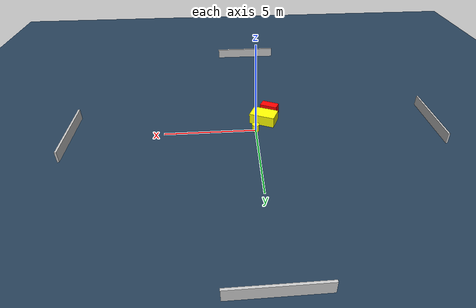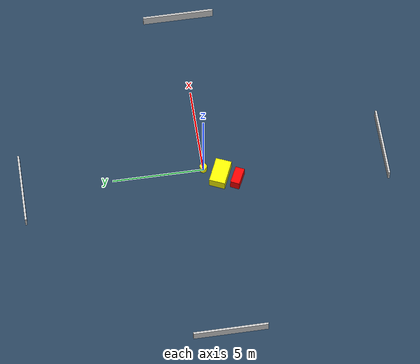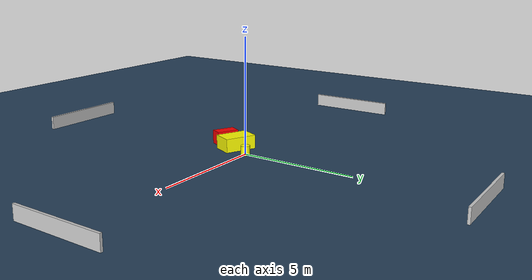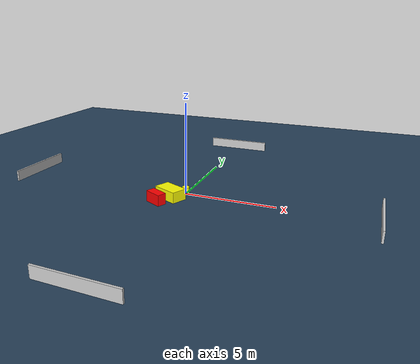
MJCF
<?xml version="1.0" ?>
<mujoco model="generated_environment">
  <option timestep="0.01" integrator="RK4" cone="elliptic"/>
  <default>
    <geom density="1"/>
  </default>
  <asset>
    <texture builtin="gradient" height="3072" name="skybox" rgb1="0.3 0.5 0.7" rgb2="0 0 0" type="skybox" width="512"/>
    <texture builtin="checker" height="300" name="groundplane" rgb1="0.2 0.3 0.4" rgb2="0.1 0.2 0.3" type="2d" width="300"/>
    <material name="groundplane" reflectance="0.2" texrepeat="5 5" texture="groundplane"/>
  </asset>
  <worldbody>
    <light dir="0 0 -1" directional="true" pos="0 0 1.5"/>
    <geom condim="3" friction="0.5 0.005 0.001" material="groundplane" name="floor" pos="0 0 0" size="0 0 0.05" type="plane"/>
    <body name="walls">
      <geom name="wall_1" condim="4" pos="-10.0 0.0 0.3" rgba="0.800000011920929 0.800000011920929 0.800000011920929 1.0" size="0.05 2.0 0.3" type="box"/>
      <geom name="wall_2" condim="4" pos="10.0 0.0 0.3" rgba="0.800000011920929 0.800000011920929 0.800000011920929 1.0" size="0.05 2.0 0.3" type="box"/>
      <geom name="wall_3" condim="4" pos="0.0 -10.0 0.3" rgba="0.800000011920929 0.800000011920929 0.800000011920929 1.0" size="2.0 0.05 0.3" type="box"/>
      <geom name="wall_4" condim="4" pos="0.0 10.0 0.3" rgba="0.800000011920929 0.800000011920929 0.800000011920929 1.0" size="2.0 0.05 0.3" type="box"/>
    </body>
    <body name="robot">
      <joint name="joint_x" type="slide" pos="0 0 0" axis="1 0 0"/>
      <joint name="joint_y" type="slide" pos="0 0 0" axis="0 1 0"/>
      <geom name="robot" type="cylinder" pos="0.0 0.0 0.2" size="0.2 0.2 0.0" mass="5.0" friction="1.0 0.005 0.0001" condim="4" rgba="1.0 1.0 0.0 1.0"/>
    </body>
    <body name="obstacle_1_movable">
      <geom name="obstacle_1_movable" condim="4" pos="-0.5330624264471856 -0.8688378365657589 0.3" euler="0 0 336.1599312442797" friction="0.0 0.005 0.001" rgba="1.0 1.0 0.0 1.0" size="0.7146066144711212 0.44295266464167965 0.3" type="box" mass="0.1"/>
      <joint type="free"/>
    </body>
    <body name="obstacle_2_static">
      <geom name="obstacle_2_static" condim="4" pos="-0.9483745090355614 -1.7498570300587901 0.3" euler="0 0 154.0326017720888" friction="0.0 0.005 0.001" rgba="1.0 0.0 0.0 1.0" size="0.49119881963659495 0.25351165100949447 0.3" type="box"/>
    </body>
  </worldbody>
  <actuator>
    <motor name="actuator_x" joint="joint_x" gear="1" ctrlrange="-1 1"/>
    <motor name="actuator_y" joint="joint_y" gear="1" ctrlrange="-1 1"/>
  </actuator>
</mujoco>
